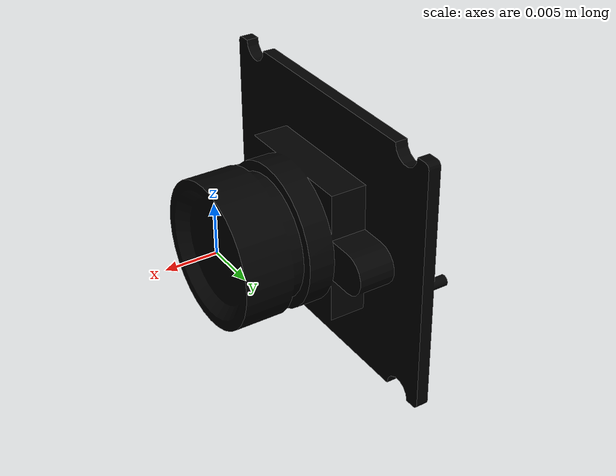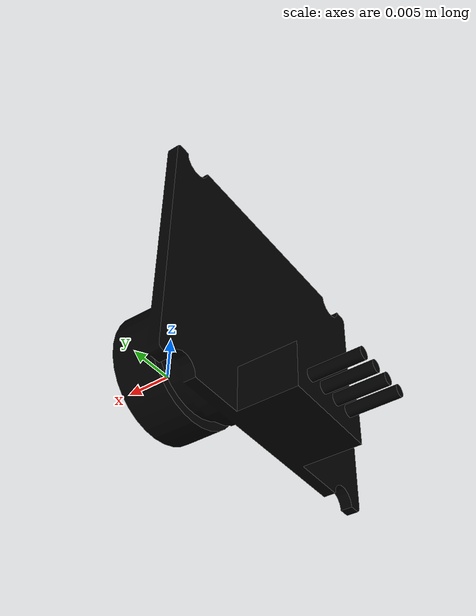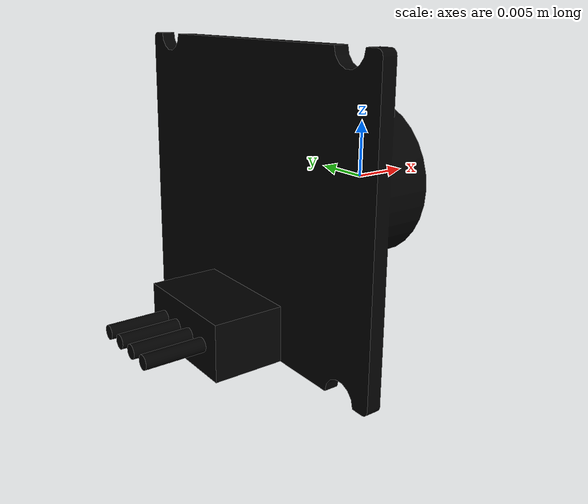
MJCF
<mujoco model="base_cam">
  <default>
    <default class="visual">
      <geom group="2" type="mesh" contype="0" conaffinity="0"/>
    </default>
    <default class="collision">
      <geom group="3" type="mesh"/>
    </default>
  </default>
  <asset>
    <material name="material_0" specular="0.4000000000000001" shininess="0.001" rgba="0.00000000 0.00000000 0.00000000 1.0"/>
    <mesh file="base_cam.obj"/>
  </asset>
  <worldbody>
    <body name="base_cam">
      <geom material="material_0" mesh="base_cam" class="visual"/>
    </body>
  </worldbody>
</mujoco>
